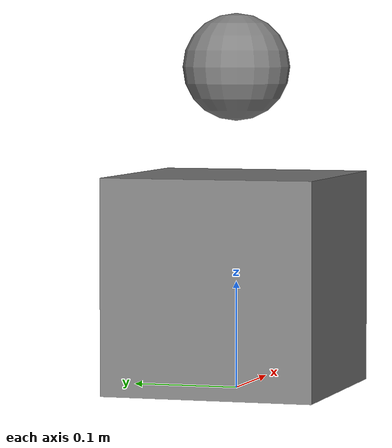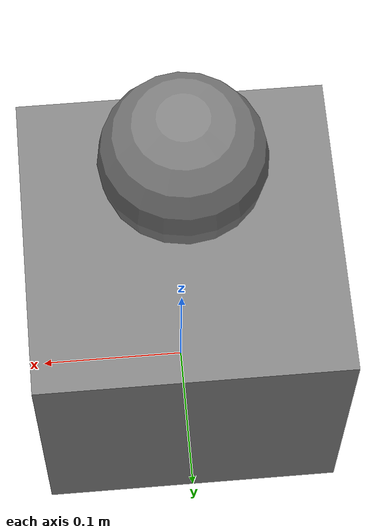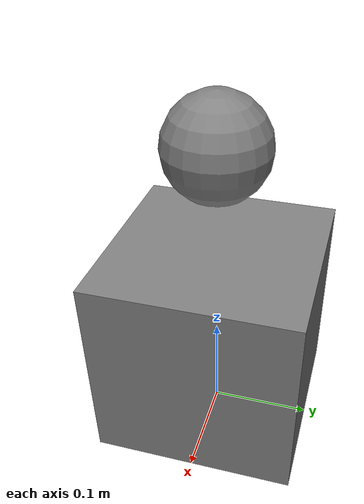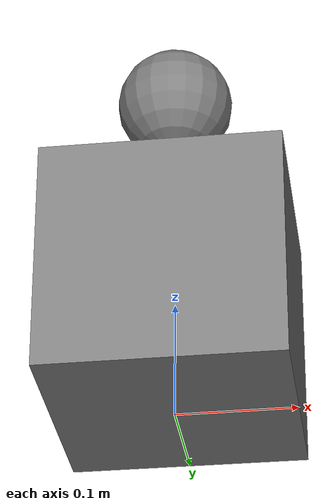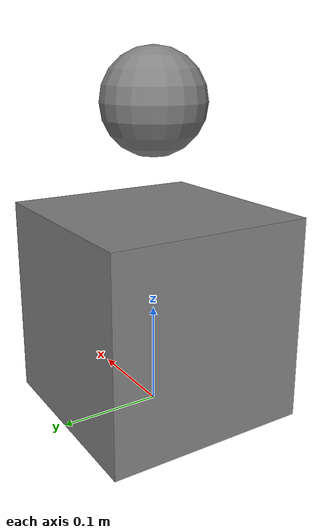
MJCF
<mujoco model="test">
                <worldbody>
                    <body name="base" pos="0 0 0.1">
                        <geom type="box" size="0.1 0.1 0.1"/>
                        <body name="child" pos="0 0 0.2">
                            <joint name="j1" type="hinge"/>
                            <geom type="sphere" size="0.05"/>
                        </body>
                    </body>
                </worldbody>
            </mujoco>
